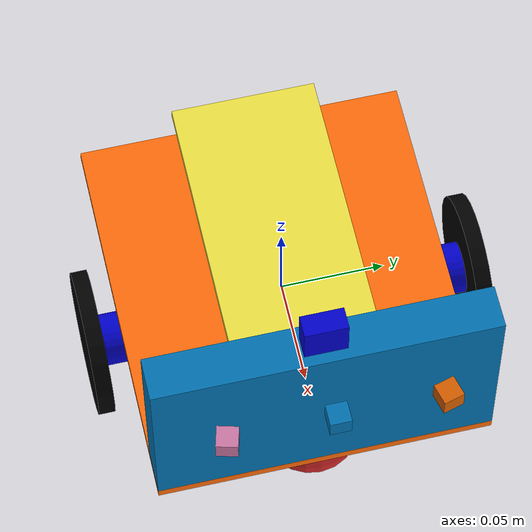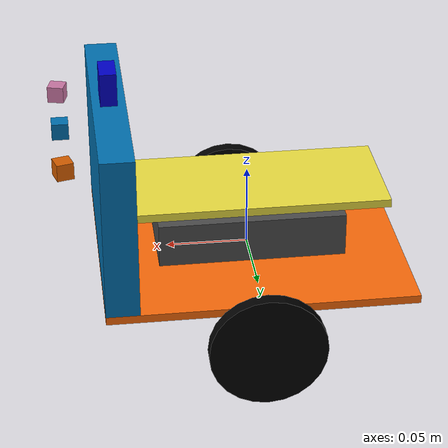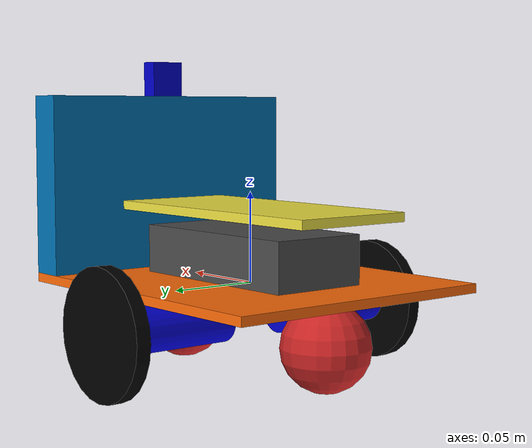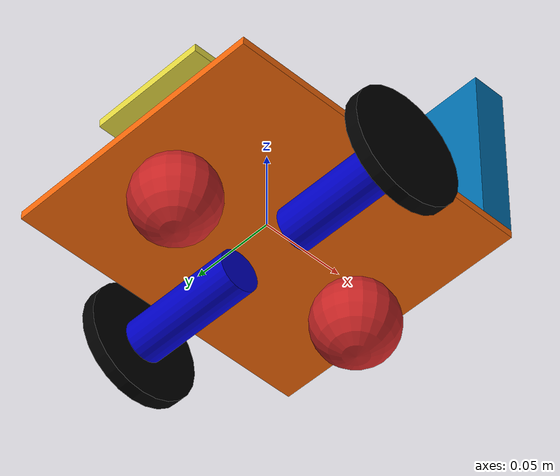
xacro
<?xml version="1.0"?>
<robot name="bilbot" xmlns:xacro="http://www.ros.org/wiki/xacro">
	<xacro:include filename="$(find bilbot_description)/urdf/bilbot.gazebo" />
 	<xacro:include filename="$(find bilbot_description)/urdf/materials.xacro" />
 	<xacro:include filename="$(find bilbot_description)/urdf/macros.xacro" />
	<xacro:property name="PI" value="3.1415926535897931"/>

	<xacro:property name="chassisHeight" value="0.005"/>
	<xacro:property name="chassisLength" value="0.185"/>
	<xacro:property name="chassisWidth" value="0.16"/>
	<xacro:property name="chassisMass" value="5"/>

	<xacro:property name="layerHeight" value="0.005"/>
	<xacro:property name="layerLength" value="0.165"/>
	<xacro:property name="layerWidth" value="0.07"/>
	<xacro:property name="layerMass" value=".6"/>

	<xacro:property name="batteryHeight" value="0.027"/>
	<xacro:property name="batteryLength" value="0.114"/>
	<xacro:property name="batteryWidth" value="0.056"/>
	<xacro:property name="batteryMass" value="2"/>
	<xacro:property name="batteryOffset" value="-0.03"/>

	<xacro:property name="casterRadius" value="0.024"/>
	<xacro:property name="casterMass" value="2"/>

  <xacro:property name="wheelSeparation" value="0.1875"/>
  <xacro:property name="wheelVerticalOffset" value="0.018"/>
	<xacro:property name="wheelWidth" value="0.008"/>
	<xacro:property name="wheelRadius" value="0.035"/>
	<xacro:property name="wheelPos" value="0.2"/>
	<xacro:property name="wheelMass" value="0.2"/>

	<xacro:property name="frontWidth" value="0.16"/>
	<xacro:property name="frontLength" value="0.02"/>
	<xacro:property name="frontHeight" value="0.1"/>
	<xacro:property name="frontMass" value="1"/>

	<xacro:property name="motorWidth" value="0.07"/>
	<xacro:property name="motorRadius" value="0.0125"/>
	<xacro:property name="motorMass" value="0.104"/>

	<xacro:property name="supportWidth" value="0.005"/>
	<xacro:property name="supportHeight" value="0.035"/>
	<xacro:property name="supportLength" value="0.005"/>
	<xacro:property name="supportMass" value="0.01"/>

	<xacro:property name="raspberrypiWidth" value="0.06"/>
	<xacro:property name="raspberrypiHeight" value="0.01"/>
	<xacro:property name="raspberrypiLength" value="0.04"/>
	<xacro:property name="raspberrypiMass" value="0.05"/>

	<xacro:property name="pcbWidth" value="0.04"/>
	<xacro:property name="pcbHeight" value="0.01"/>
	<xacro:property name="pcbLength" value="0.04"/>
	<xacro:property name="pcbMass" value="0.05"/>

	<xacro:property name="grip_shaftWidth" value="0.04"/>
	<xacro:property name="grip_shaftRadius" value="0.005"/>
	<xacro:property name="grip_shaftMass" value="0.104"/>

	<xacro:property name="grip_headWidth" value="0.06"/>
	<xacro:property name="grip_headHeight" value="0.01"/>
	<xacro:property name="grip_headLength" value="0.02"/>
	<xacro:property name="grip_headMass" value="0.1"/>

	<xacro:property name="supportX" value="0.06"/>
	<xacro:property name="supportY" value="0.035"/>

  <xacro:property name="fingerHeight" value="0.01"/>
  <xacro:property name="fingerLength" value="0.03"/>
  <xacro:property name="fingerWidth" value="0.01"/>
  <xacro:property name="fingerMass" value="0.5"/>

  <xacro:property name="cameraWidth" value="0.01"/>
  <xacro:property name="cameraHeight" value="0.02"/>
  <xacro:property name="cameraLength" value="0.02"/>
  <xacro:property name="cameraMass" value="0.1"/>

  <xacro:property name="laserWidth" value="0.01"/>
  <xacro:property name="laserHeight" value="0.01"/>
  <xacro:property name="laserLength" value="0.01"/>
  <xacro:property name="laserMass" value="0.01"/>

<link name="base_link" />

<joint name="base_joint" type="fixed">
  <parent link="base_link"/>
  <child link="chassis"/>
</joint>

<link name="chassis">
  <collision>
    <origin xyz="0 0 0" rpy="0 0 0"/>
    <geometry>
      <box size="${chassisLength} ${chassisWidth} ${chassisHeight}"/>
    </geometry>
  </collision>
  <visual>
    <origin xyz="0 0 0" rpy="0 0 0"/>
    <geometry>
      <box size="${chassisLength} ${chassisWidth} ${chassisHeight}"/>
    </geometry>
    <material name="orange"/>
  </visual>
  <inertial>
    <origin xyz="0 0 0" rpy="0 0 0"/>
    <mass value="${chassisMass}"/>
    <xacro:box_inertia m="${chassisMass}" x="${chassisLength}" y="${chassisWidth}" z="${chassisHeight}"/>
  </inertial>
</link>

<joint name="battery_joint" type="fixed">
  <parent link="chassis"/>
  <child link="battery"/>
  <origin xyz="0 0 ${chassisHeight/2 + batteryHeight/2}" rpy="0 0 0"/>
</joint>

<link name="battery">
  <collision>
    <origin xyz="0 0 0" rpy="0 0 0"/>
    <geometry>
      <box size="${batteryLength} ${batteryWidth} ${batteryHeight}"/>
    </geometry>
  </collision>
  <visual>
    <origin xyz="0 0 0" rpy="0 0 0"/>
    <geometry>
      <box size="${batteryLength} ${batteryWidth} ${batteryHeight}"/>
    </geometry>
  </visual>
  <inertial>
    <origin xyz="0 0 0" rpy="0 0 0"/>
    <mass value="${batteryMass}"/>
    <xacro:box_inertia m="${batteryMass}" x="${batteryLength}" y="${batteryWidth}" z="${batteryHeight}"/>
  </inertial>
</link>

<joint name="layer_joint" type="fixed">
  <parent link="chassis"/>
  <child link="layer"/>
  <origin xyz="0 0 ${chassisHeight/2+supportHeight}" rpy="0 0 0"/>
</joint>

<link name="layer">
  <collision>
    <origin xyz="0 0 ${layerHeight/2}" rpy="0 0 0"/>
    <geometry>
      <box size="${layerLength} ${layerWidth} ${layerHeight}"/>
    </geometry>
  </collision>
  <visual>
    <origin xyz="0 0 ${layerHeight/2}" rpy="0 0 0"/>
    <geometry>
      <box size="${layerLength} ${layerWidth} ${layerHeight}"/>
    </geometry>
  </visual>
  <inertial>
    <origin xyz="0 0 0" rpy="0 0 0"/>
    <mass value="${layerMass}"/>
    <xacro:box_inertia m="${layerMass}" x="${layerLength}" y="${layerWidth}" z="${layerHeight}"/>
  </inertial>
</link>

<joint name="front_joint" type="fixed">
  <parent link="chassis"/>
  <child link="front"/>
  <origin xyz="${chassisLength/2-frontLength/2} 0 ${chassisHeight/2}" rpy="0 0 0"/>
</joint>

<link name="front">
  <collision>
    <origin xyz="0 0 ${frontHeight/2}" rpy="0 0 0"/>
    <geometry>
      <box size="${frontLength} ${frontWidth} ${frontHeight}"/>
    </geometry>
  </collision>
  <visual>
    <origin xyz="0 0 ${frontHeight/2}" rpy="0 0 0"/>
    <geometry>
      <box size="${frontLength} ${frontWidth} ${frontHeight}"/>
    </geometry>
  </visual>
  <inertial>
    <origin xyz="0 0 0" rpy="0 0 0"/>
    <mass value="${frontMass}"/>
    <xacro:box_inertia m="${frontMass}" x="${frontLength}" y="${frontWidth}" z="${frontHeight}"/>
  </inertial>
</link>

<xacro:caster fb="front" tX="1"/>
<xacro:caster fb="back" tX="-1"/>

<xacro:wheel lr="right" tY="1"/>
<xacro:wheel lr="left" tY="-1"/>

 <joint name="camera_joint" type="fixed">
  <parent link="front"/>
  <child link="camera"/>
  <origin xyz="0 0 ${frontHeight}" rpy="0 0 0"/>
</joint>

<link name="camera">
  <collision>
    <origin xyz="0 0 ${cameraHeight/2}" rpy="0 0 0"/>
    <geometry>
      <box size="${cameraWidth} ${cameraLength} ${cameraHeight}"/>
    </geometry>
  </collision>

  <visual>
    <origin xyz="0 0 ${cameraHeight/2}" rpy="0 0 0"/>
    <geometry>
      <box size="${cameraWidth} ${cameraLength} ${cameraHeight}"/>
    </geometry>
    <material name="blue"/>
  </visual>

  <inertial>
    <mass value="${cameraMass}" />
    <origin xyz="0 0 0" rpy="0 0 0"/>
    <box_inertia m="${cameraMass}" x="${cameraWidth}" y="${cameraLength}" z="${cameraHeight}" />
  </inertial>
</link>

 <joint name="laser1_joint" type="fixed">
    <axis xyz="0 0 0" />
    <origin xyz="0.029 0 0.0825" rpy="0 0 0"/>
    <parent link="front"/>
    <child link="laser1"/>
  </joint>

  <link name="laser1">
    <collision>
      <origin xyz="0 0 0" rpy="0 0 0"/>
      <geometry>
    <box size="${laserWidth} ${laserLength} ${laserHeight}"/>
      </geometry>
    </collision>

    <visual>
      <origin xyz="0 0 0" rpy="0 0 0"/>
      <geometry>
        <box size="${laserWidth} ${laserLength} ${laserHeight}"/>
      </geometry>
    </visual>

    <inertial>
      <mass value="${laserMass}" />
      <origin xyz="0 0 0" rpy="0 0 0"/>
      <box_inertia m="${laserMass}" x="${laserWidth}" y="${laserLength}" z="${laserHeight}" />
    </inertial>
  </link>

  <joint name="laser2_joint" type="fixed">
    <axis xyz="0 0 0" />
    <origin xyz="0.029 0.05 0.0825" rpy="0 0 0.261799"/>
    <parent link="front"/>
    <child link="laser2"/>
  </joint>

  <link name="laser2">
    <collision>
      <origin xyz="0 0 0" rpy="0 0 0"/>
      <geometry>
    <box size="${laserWidth} ${laserLength} ${laserHeight}"/>
      </geometry>
    </collision>

    <visual>
      <origin xyz="0 0 0" rpy="0 0 0"/>
      <geometry>
        <box size="${laserWidth} ${laserLength} ${laserHeight}"/>
      </geometry>
    </visual>

    <inertial>
      <mass value="${laserMass}" />
      <origin xyz="0 0 0" rpy="0 0 0"/>
      <box_inertia m="${laserMass}" x="${laserWidth}" y="${laserLength}" z="${laserHeight}" />
    </inertial>
  </link>

  <joint name="laser3_joint" type="fixed">
    <axis xyz="0 0 0" />
    <origin xyz="0.029 -0.05 0.0825" rpy="0 0 -0.261799"/>
    <parent link="front"/>
    <child link="laser3"/>
  </joint>

  <link name="laser3">
    <collision>
      <origin xyz="0 0 0" rpy="0 0 0"/>
      <geometry>
    <box size="${laserWidth} ${laserLength} ${laserHeight}"/>
      </geometry>
    </collision>

    <visual>
      <origin xyz="0 0 0" rpy="0 0 0"/>
      <geometry>
        <box size="${laserWidth} ${laserLength} ${laserHeight}"/>
      </geometry>
    </visual>

    <inertial>
      <mass value="${laserMass}" />
      <origin xyz="0 0 0" rpy="0 0 0"/>
      <box_inertia m="${laserMass}" x="${laserWidth}" y="${laserLength}" z="${laserHeight}" />
    </inertial>
  </link>

</robot>

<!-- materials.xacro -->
<robot name="bilbot" xmlns:xacro="http://www.ros.org/wiki/xacro">
<material name="black">
  <color rgba="0.0 0.0 0.0 1.0"/>
</material>

<material name="blue">
  <color rgba="0.0 0.0 0.8 1.0"/>
</material>

<material name="green">
  <color rgba="0.0 0.8 0.0 1.0"/>
</material>

<material name="grey">
  <color rgba="0.2 0.2 0.2 1.0"/>
</material>

<material name="orange">
  <color rgba="${255/255} ${108/255} ${10/255} 1.0"/>
</material>

<material name="brown">
  <color rgba="${222/255} ${207/255} ${195/255} 1.0"/>
</material>

<material name="red">
  <color rgba="0.8 0.0 0.0 1.0"/>
</material>

<material name="white">
  <color rgba="1.0 1.0 1.0 1.0"/>
</material>
</robot>

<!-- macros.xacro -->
<robot name="bilbot" xmlns:xacro="http://www.ros.org/wiki/xacro">

<xacro:macro name="cylinder_inertia" params="m r h">
  <inertia  ixx="${m*(3*r*r+h*h)/12}" ixy = "0" ixz = "0"
            iyy="${m*r*r/2}" iyz = "0"
            izz="${m*(3*r*r+h*h)/12}"
  />
</xacro:macro>

<xacro:macro name="box_inertia" params="m x y z">
  <inertia  ixx="${m*(y*y+z*z)/12}" ixy = "0" ixz = "0"
            iyy="${m*(x*x+z*z)/12}" iyz = "0"
            izz="${m*(x*x+y*y)/12}"
  />
</xacro:macro>

<xacro:macro name="sphere_inertia" params="m r">
  <inertia  ixx="${2*m*r*r/5}" ixy = "0" ixz = "0"
            iyy="${2*m*r*r/5}" iyz = "0"
            izz="${2*m*r*r/5}"
  />
</xacro:macro>

<xacro:macro name="wheel" params="lr tY">
<link name="${lr}_motor">
  <collision>
    <origin xyz="0 0 0" rpy="${tY*PI/2} 0 0" />
    <geometry>
      <cylinder length="${motorWidth}" radius="${motorRadius}"/>
    </geometry>
  </collision>
  <visual>
    <origin xyz="0 0 0" rpy="${tY*PI/2} 0 0" />
    <geometry>
      <cylinder length="${motorWidth}" radius="${motorRadius}"/>
    </geometry>
    <material name="blue"/>
  </visual>
  <inertial>
    <mass value="${wheelMass}"/>
    <cylinder_inertia m="${wheelMass}" r="${wheelRadius}" h="${wheelWidth}"/>
  </inertial>
</link>

<joint name="base_to_${lr}_motor" type="fixed">
  <parent link="chassis"/>
  <child link="${lr}_motor"/>
  <origin xyz="0 ${tY*(wheelSeparation-motorWidth-wheelWidth)/2} -${wheelVerticalOffset}" />
</joint>

<link name="${lr}_wheel">
  <collision>
    <origin xyz="0 0 0" rpy="${tY*PI/2} 0 0" />
    <geometry>
      <cylinder length="${wheelWidth}" radius="${wheelRadius}"/>
    </geometry>
  </collision>
  <visual>
    <origin xyz="0 0 0" rpy="${tY*PI/2} 0 0" />
    <geometry>
      <cylinder length="${wheelWidth}" radius="${wheelRadius}"/>
    </geometry>
    <material name="black"/>
  </visual>
  <inertial>
    <origin xyz="0 0 0" rpy="${tY*PI/2} 0 0" />
    <mass value="${wheelMass}"/>
    <cylinder_inertia m="${wheelMass}" r="${wheelRadius}" h="${wheelWidth}"/>
  </inertial>
</link>

<gazebo reference="${lr}_wheel">
  <mu1 value="1.0"/>
  <mu2 value="1.0"/>
  <kp value="100000.0" />
  <kd value="1.0" />
  <material>Gazebo/Black</material>
</gazebo>

  <joint name="${lr}_wheel_joint" type="continuous">
    <axis xyz="0 1 0" rpy="0 0 0" />
    <parent link="${lr}_motor"/>
    <child link="${lr}_wheel"/>
    <origin xyz="0 ${tY*(motorWidth/2+wheelWidth/2)} 0" rpy="0 0 0"/>
  </joint>

<transmission name="${lr}_trans">
  <type>transmission_interface/SimpleTransmission</type>
  <joint name="${lr}_wheel_joint">
    <hardwareInterface>hardware_interface/VelocityJointInterface</hardwareInterface>
  </joint>
  <actuator name="${lr}_motor">
    <mechanicalReduction>1</mechanicalReduction>
  </actuator>
</transmission>
</xacro:macro>

<xacro:macro name="caster" params="fb tX">

<joint name="${fb}_caster_joint" type="fixed">
  <parent link="chassis"/>
  <child link="${fb}_caster_wheel"/>
  <origin xyz="${tX*chassisLength/3} 0 -${chassisHeight/2}" rpy="0 0 0"/>
</joint>

<gazebo reference="${fb}_caster_wheel">
  <mu1>0.0</mu1>
  <mu2>0.0</mu2>
  <material>Gazebo/Red</material>
</gazebo>

<link name="${fb}_caster_wheel">
  <collision>
    <origin xyz="0 0 -${casterRadius}" rpy="0 0 0"/>
    <geometry>
      <sphere radius="${casterRadius}"/>
    </geometry>
  </collision>
  <visual>
    <origin xyz="0 0 -${casterRadius}" rpy="0 0 0"/>
    <geometry>
      <sphere radius="${casterRadius}"/>
    </geometry>
  </visual>
  <inertial>
    <origin xyz="0 0 0" rpy="0 0 0"/>
    <mass value="${casterMass}"/>
    <xacro:sphere_inertia m="${casterMass}" r="${casterRadius}"/>
  </inertial>
</link>
</xacro:macro>

<xacro:macro name="gripper">
  <joint name="grip_shaft_joint" type="fixed">
    <parent link="front"/>
    <child link="grip_shaft"/>
    <origin xyz="${frontLength/2} 0 ${frontHeight/3}" rpy="0 0 0"/>
  </joint>

  <link name="grip_shaft">
    <collision>
      <origin xyz="${grip_shaftWidth/2} 0 0" rpy="0 ${PI/2} 0"/>
      <geometry>
        <cylinder length="${grip_shaftWidth}" radius="${grip_shaftRadius}"/>
      </geometry>
    </collision>
    <visual>
      <origin xyz="${grip_shaftWidth/2} 0 0" rpy="0 ${PI/2} 0"/>
      <geometry>
        <cylinder length="${grip_shaftWidth}" radius="${grip_shaftRadius}"/>
      </geometry>
    </visual>
    <inertial>
      <xacro:cylinder_inertia m="${grip_shaftMass}" h="${grip_shaftWidth}" r="${grip_shaftRadius}"/>
      <origin xyz="0 0 0" rpy="0 0 0"/>
      <mass value="${grip_shaftMass}"/>
    </inertial>
  </link>

  <joint name="grip_head_joint" type="revolute">
    <axis xyz="0 1 0"/>
    <limit effort="50.0" lower="0.0" upper="${PI/2}" velocity="0.5"/>
    <origin xyz="${grip_shaftWidth+grip_headLength/2} 0 0" rpy="0 0 0"/>
    <parent link="grip_shaft"/>
    <child link="grip_head"/>
    <dynamics damping="0.0" friction="0.0"/>
  </joint>
  <transmission name="lift_gripper_trans">
    <type>transmission_interface/SimpleTransmission</type>
    <actuator name="lift_gripper_motor">
      <mechanicalReduction>1</mechanicalReduction>
    </actuator>
    <joint name="grip_head_joint">
      <hardwareInterface>hardware_interface/PositionJointInterface</hardwareInterface>
    </joint>
  </transmission>

  <link name="grip_head">
    <collision>
      <origin xyz="0 0 0" rpy="0  0 ${PI/2}"/>
      <geometry>
        <box size="${grip_headWidth} ${grip_headLength} ${grip_headHeight}"/>
      </geometry>
    </collision>
    <visual>
      <origin xyz="0 0 0" rpy="0 0 ${PI/2}"/>
      <geometry>
        <box size="${grip_headWidth} ${grip_headLength} ${grip_headHeight}"/>
      </geometry>
    </visual>
    <inertial>
      <xacro:box_inertia m="${grip_headMass}" x="${grip_headLength}" y="${grip_headWidth}" z="${grip_headHeight}"/>
      <origin xyz="0 0 0" rpy="0 0 0"/>
      <mass value="${grip_headMass}"/>
    </inertial>
  </link>

  <joint name="left_finger_joint" type="prismatic">
    <parent link="grip_head"/>
    <child link="left_finger"/>
    <limit effort="50" lower="0" upper="${grip_headWidth/2-fingerWidth}" velocity="0.2"/>
    <origin rpy="0 0 -${PI/2}" xyz="${grip_headLength/2} ${grip_headWidth/2-fingerWidth/2} 0"/>
  </joint>

  <transmission name="left_finger_trans">
    <type>transmission_interface/SimpleTransmission</type>
    <actuator name="left_finger_motor">
      <mechanicalReduction>1</mechanicalReduction>
    </actuator>
    <joint name="left_finger_joint">
      <hardwareInterface>hardware_interface/PositionJointInterface</hardwareInterface>
    </joint>
  </transmission>

  <link name="left_finger">
    <collision>
      <geometry>
        <box size="${fingerWidth} ${fingerLength} ${fingerHeight}"/>
      </geometry>
      <origin xyz="0 ${fingerLength/2} 0" rpy="0 0 0"/>
    </collision>
    <visual>
      <geometry>
        <box size="${fingerWidth} ${fingerLength} ${fingerHeight}"/>
      </geometry>
      <origin xyz="0 ${fingerLength/2} 0" rpy="0 0 0"/>
    </visual>
    <inertial>
      <xacro:box_inertia m="${fingerMass}" x="${fingerLength}" y="${fingerWidth}" z="${fingerHeight}"/>
      <origin xyz="0 0 0" rpy="0 0 0"/>
      <mass value="${fingerMass}"/>
    </inertial>
  </link>

  <joint name="right_finger_joint" type="prismatic">
    <parent link="grip_head"/>
    <child link="right_finger"/>
    <limit effort="50" lower="0" upper="${grip_headWidth/2-fingerWidth}" velocity="0.2"/>
    <origin rpy="0 0 ${PI/2}" xyz="${grip_headLength/2} -${grip_headWidth/2-fingerWidth/2} 0"/>
  </joint>

  <transmission name="right_finger_trans">
    <type>transmission_interface/SimpleTransmission</type>
    <actuator name="right_finger_motor">
      <mechanicalReduction>1</mechanicalReduction>
    </actuator>
    <joint name="right_finger_joint">
      <hardwareInterface>hardware_interface/PositionJointInterface</hardwareInterface>
    </joint>
  </transmission>

  <link name="right_finger">
    <collision>
      <geometry>
        <box size="${fingerWidth} ${fingerLength} ${fingerHeight}"/>
      </geometry>
      <origin xyz="0 -${fingerLength/2} 0" rpy="0 0 0"/>
    </collision>
    <visual>
      <geometry>
        <box size="${fingerWidth} ${fingerLength} ${fingerHeight}"/>
      </geometry>
      <origin xyz="0 -${fingerLength/2} 0" rpy="0 0 0"/>
    </visual>
    <inertial>
      <xacro:box_inertia m="${fingerMass}" x="${fingerLength}" y="${fingerWidth}" z="${fingerHeight}"/>
      <origin xyz="0 0 0" rpy="0 0 0"/>
      <mass value="${fingerMass}"/>
    </inertial>
  </link>

</xacro:macro>

<xacro:macro name="support" params="fb lr tX tY">
  <joint name="base_to_${fb}_${lr}_support" type="fixed">
    <parent link="chassis"/>
    <child link="${fb}_${lr}_support"/>
    <origin xyz="${tX*supportX} ${tY*supportY} ${chassisHeight/2}"/>
  </joint>

  <link name="${fb}_${lr}_support">
    <collision>
      <origin xyz="0 0 ${supportHeight/2}" rpy="0 0 0"/>
      <geometry>
        <box size="${supportWidth} ${supportLength} ${supportHeight}"/>
      </geometry>
    </collision>
    <visual>
      <origin xyz="0 0 ${supportHeight/2}" rpy="0 0 0"/>
      <geometry>
        <box size="${supportWidth} ${supportLength} ${supportHeight}"/>
      </geometry>
      <material name="grey"/>
    </visual>
    <inertial>
      <xacro:box_inertia m="${supportMass}" x="${supportLength}" y="${supportWidth}" z="${supportHeight}"/>
      <origin xyz="0 0 0" rpy="0 0 0"/>
      <mass value="${supportMass}"/>
    </inertial>
  </link>
</xacro:macro>
</robot>
